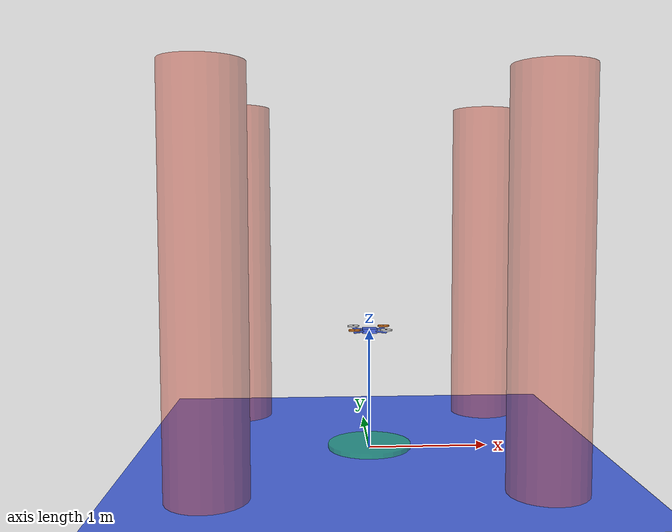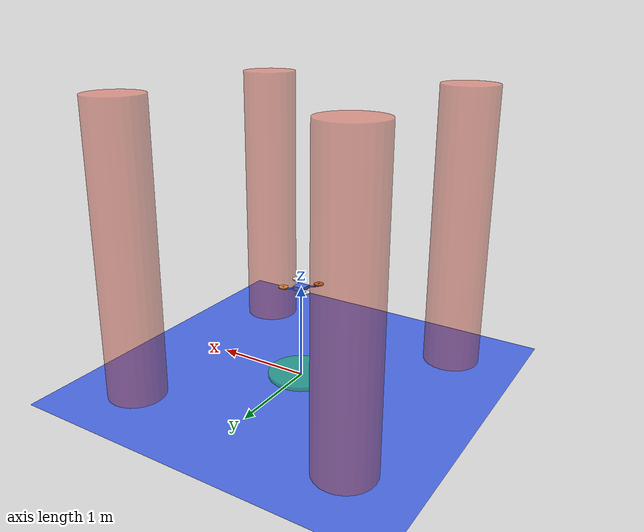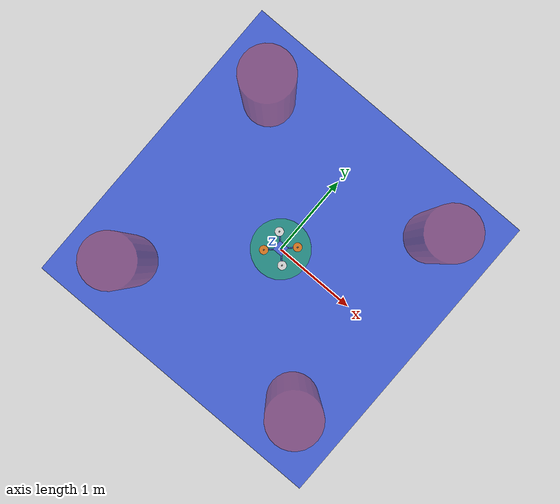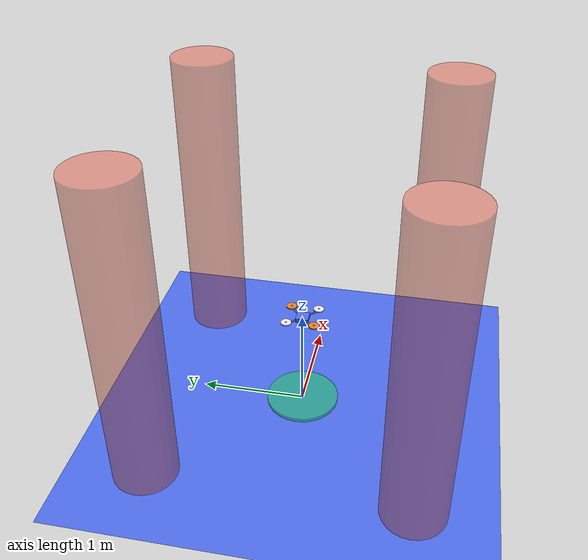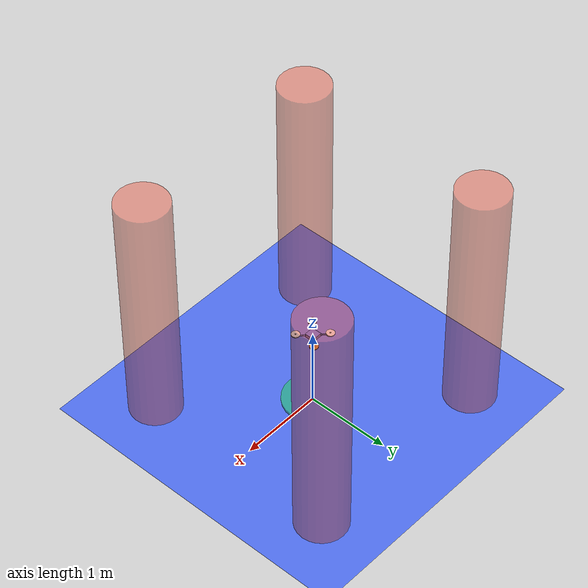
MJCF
<mujoco model="drone">
  <compiler angle="degree" inertiafromgeom="true"/>
  <option timestep="0.01" integrator="RK4" density="1.2" viscosity="1.8e-5"/>

  <default>
    <geom conaffinity="0" condim="3" contype="1" friction="1 0.1 0.1"
          rgba="0.30 0.42 0.90 1"/>
    <motor ctrllimited="true"/>
  </default>

  <asset>
    <texture name="sky" type="skybox" builtin="gradient" rgb1="0.5 0.7 0.9" rgb2="0.05 0.08 0.12"
             width="512" height="512"/>
    <texture name="grid" type="2d" builtin="checker" rgb1="0.16 0.20 0.26" rgb2="0.22 0.28 0.36"
             width="512" height="512"/>
    <material name="grid" texture="grid" texrepeat="20 20" reflectance="0.1"/>
  </asset>

  <worldbody>
    <light name="top" pos="0 0 6" dir="0 0 -1" diffuse="0.9 0.9 0.9"/>
    <geom name="floor" type="plane" conaffinity="1" contype="1" condim="3"
          size="40 40 0.1" pos="0 0 0" material="grid"/>

    <body name="core" pos="0 0 1.0">
      <freejoint name="root"/>
      <!-- central body -->
      <geom name="core_geom" type="box" size="0.06 0.06 0.02" mass="0.40"/>
      <!-- X arms + rotor pads (rotor i at (+-L, +-L)); rotor disks carry a little mass -->
      <geom name="arm_fr" type="capsule" fromto="0 0 0  0.13 0.13 0" size="0.008" mass="0.01"/>
      <geom name="arm_bl" type="capsule" fromto="0 0 0 -0.13 -0.13 0" size="0.008" mass="0.01"/>
      <geom name="arm_fl" type="capsule" fromto="0 0 0 -0.13 0.13 0" size="0.008" mass="0.01"/>
      <geom name="arm_br" type="capsule" fromto="0 0 0  0.13 -0.13 0" size="0.008" mass="0.01"/>
      <geom name="rotor1" type="cylinder" pos=" 0.13  0.13 0.02" size="0.05 0.005" mass="0.01" rgba="0.9 0.5 0.15 1"/>
      <geom name="rotor2" type="cylinder" pos="-0.13  0.13 0.02" size="0.05 0.005" mass="0.01" rgba="0.9 0.9 0.9 1"/>
      <geom name="rotor3" type="cylinder" pos="-0.13 -0.13 0.02" size="0.05 0.005" mass="0.01" rgba="0.9 0.5 0.15 1"/>
      <geom name="rotor4" type="cylinder" pos=" 0.13 -0.13 0.02" size="0.05 0.005" mass="0.01" rgba="0.9 0.9 0.9 1"/>
      <!-- thrust application sites at the rotor centers -->
      <site name="thrust1" pos=" 0.13  0.13 0.02" size="0.01"/>
      <site name="thrust2" pos="-0.13  0.13 0.02" size="0.01"/>
      <site name="thrust3" pos="-0.13 -0.13 0.02" size="0.01"/>
      <site name="thrust4" pos=" 0.13 -0.13 0.02" size="0.01"/>
    </body>

    <body name="pad" mocap="true" pos="0 0 0.02">
      <geom name="pad_geom" type="cylinder" size="0.35 0.02" mass="0" contype="0" conaffinity="0"
            rgba="0.10 0.80 0.35 0.55"/>
    </body>
    <body name="obs0" mocap="true" pos="1.2 1.2 1.5">
      <geom name="obs0_geom" type="cylinder" size="0.30 1.5" mass="0" contype="0" conaffinity="0"
            rgba="0.90 0.30 0.20 0.45"/>
    </body>
    <body name="obs1" mocap="true" pos="-1.2 1.2 1.5">
      <geom name="obs1_geom" type="cylinder" size="0.30 1.5" mass="0" contype="0" conaffinity="0"
            rgba="0.90 0.30 0.20 0.45"/>
    </body>
    <body name="obs2" mocap="true" pos="1.2 -1.2 1.5">
      <geom name="obs2_geom" type="cylinder" size="0.30 1.5" mass="0" contype="0" conaffinity="0"
            rgba="0.90 0.30 0.20 0.45"/>
    </body>
    <body name="obs3" mocap="true" pos="-1.2 -1.2 1.5">
      <geom name="obs3_geom" type="cylinder" size="0.30 1.5" mass="0" contype="0" conaffinity="0"
            rgba="0.90 0.30 0.20 0.45"/>
    </body>
  </worldbody>

  <actuator>
    <!-- gear: force along +z of the site (body up) + yaw reaction torque about +z,
         alternating sign around the X so differential thrust yaws the body. -->
    <motor name="m1" site="thrust1" gear="0 0 1 0 0  0.0125" ctrlrange="0 6"/>
    <motor name="m2" site="thrust2" gear="0 0 1 0 0 -0.0125" ctrlrange="0 6"/>
    <motor name="m3" site="thrust3" gear="0 0 1 0 0  0.0125" ctrlrange="0 6"/>
    <motor name="m4" site="thrust4" gear="0 0 1 0 0 -0.0125" ctrlrange="0 6"/>
  </actuator>
</mujoco>
